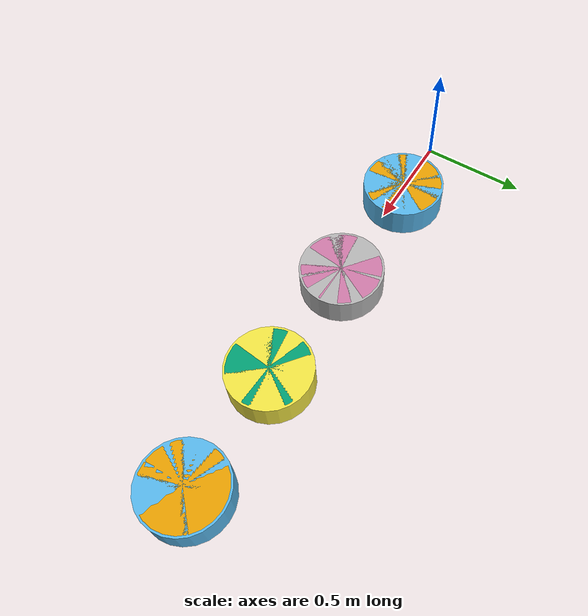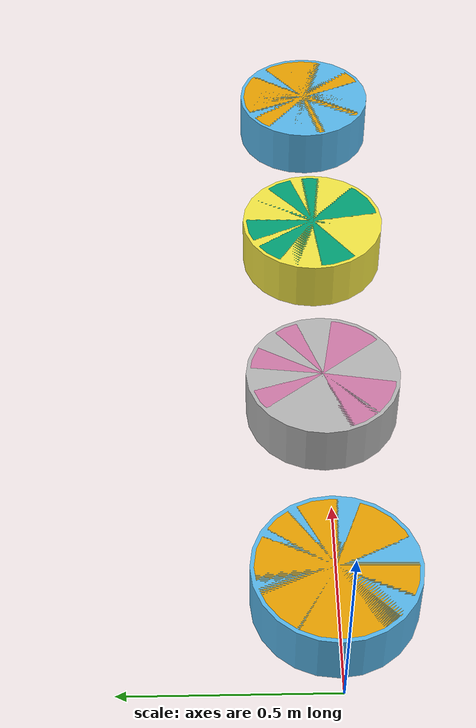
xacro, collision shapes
<?xml version="1.0"?>
<robot
    xmlns:xacro="http://www.ros.org/wiki/xacro" name="hydrusx" >

  <xacro:include filename="$(find hydrus)/urdf/hydrusx/hydrusx_common.xacro" />
  <xacro:include filename="$(find hydrus)/urdf/hydrusx/hydrusx_link.urdf.xacro" />

  <xacro:hydrusx_link self="1" child="2" rotor_direction="-1" general="false" fc="false" pc="false"/>
  <xacro:hydrusx_link self="2" child="3" rotor_direction="1"  general="true" fc="false" pc="false"/>
  <xacro:hydrusx_link self="3" child="4" rotor_direction="-1" general="false" fc="true"  pc="false"/>
  <xacro:hydrusx_link self="4" child="4" rotor_direction="1"  general="false" fc="false" pc="false"/>

</robot>

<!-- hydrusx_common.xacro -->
<robot
    xmlns:xacro="http://www.ros.org/wiki/xacro" name="hydrusx_common" >

  <xacro:property name="pi" value="3.1415926535897931" />
  <!-- kinematics [m] -->
  <xacro:property name="link_length" value=".6" />
  <xacro:property name="link_rod_length" value=".528" />
  <xacro:property name="protector_radius" value=".1925" />
  <xacro:property name="link_joint_offset" value="0.3" />
  <xacro:property name="rotor_radius" value=".02" />
  <xacro:property name="rotor_height" value=".05" />
  <xacro:property name="bat_offset" value="0.0" />
  <xacro:property name="pc_c_offset" value="0.0" />  <!-- odroid u4: 0.22, euclid: 0 -->
  <xacro:property name="pc_v_offset" value="0.2" />  <!-- odroid u4: -0.2, euclid: 0.2 -->
  <xacro:property name="pcs_cable_offset" value="0.0" />
  <xacro:property name="fc_offset" value="-0.26" />
  <xacro:property name="sensor_c_offset" value="-0.215" />
  <xacro:property name="sensor_v_offset" value="-0.01" />
  <xacro:property name="head_leg_offset" value="-0.25" />
  <xacro:property name="tail_leg_offset" value="0.235" />

  <!-- inertial paramters -->
  <!-- mass [Kg] -->
  <xacro:property name="link_rod_mass" value="0.099" />
  <xacro:property name="link_center_mass" value=".211" />
  <xacro:property name="joint_mass" value=".2075" />
  <xacro:property name="protector_mass" value=".05" />
  <xacro:property name="protector_holder_mass" value=".0386" />
  <xacro:property name="bat_mass" value="0.364" /> <!-- hyperon: 0.41, white: 0.364 -->
  <xacro:property name="fc_mass" value=".03" />
  <xacro:property name="pc_c_mass" value=".13" /> <!-- odoroid u4: 0.1, euclid: 0.13 -->
  <xacro:property name="pc_v_mass" value=".24" />
  <xacro:property name="pcs_cable_mass" value=".03" />
  <xacro:property name="head_leg_mass" value="0.0623" />
  <xacro:property name="tail_leg_mass" value="0.09" />
  <xacro:property name="sensor_c_mass" value="0.065" />
  <xacro:property name="sensor_v_mass" value="0.18" />
  <xacro:property name="rotor_mass" value=".05" /> <!-- exclude from center mass -->

  <!-- inertial [N*m*m] -->
  <xacro:property name="link_rod_inertia" value="${link_rod_mass * link_rod_length * link_rod_length /12}" /> <!-- mass * dist * dist -->
  <xacro:property name="protector_inertia" value="${protector_mass * protector_radius * protector_radius}" /> <!-- mass * dist * dist -->
  <xacro:property name="protector_holder_inertia" value="${protector_holder_mass * protector_radius * protector_radius}" /> <!-- mass * dist * dist -->

  <!-- dynamics -->
  <xacro:property name="max_force" value="18" />

  <xacro:macro name="link_model" params="type">
    <collision>
      <origin rpy="0 0 0" xyz="${link_length* 0.5} 0 -0.03"/>
      <geometry>
        <cylinder length="0.15" radius="${protector_radius}"/>
      </geometry>
    </collision>

    <visual>
      <origin rpy="${-pi/2} 0 0" xyz="${link_length* 0.5} 0 0"/>
      <geometry>
        <mesh filename="package://hydrus/urdf/hydrusx/mesh/hydrusx_link${type}.dae"/>
      </geometry>
    </visual>
  </xacro:macro>

  <xacro:macro name="extra_module" params="name parent mass offset">
    <joint name="link2${name}" type="fixed">
      <parent link="link${parent}"/>
      <child link="${name}"/>
      <origin rpy="0 0 0" xyz="${offset} 0 0"/>
      <axis xyz="0 0 1"/>
    </joint>
    <link name="${name}">
      <inertial>
        <origin xyz="0 0 0" rpy="0 0 0"/>
        <mass value="${mass}"/>
        <inertia
            ixx="0.00001" ixy="0.0" ixz="0.0"
            iyy="0.00001" iyz="0.0"
            izz="0.00002"/>
      </inertial>
    </link>
  </xacro:macro>

  <!-- friction -->
  <xacro:macro name="friction" params="self">
    <gazebo reference="link${self}">
      <mu1>0.0001</mu1>
      <mu2>0.0001</mu2>
    </gazebo>
  </xacro:macro>

  <xacro:macro name="damping_factor" params="link">
    <gazebo reference="${link}">
      <dampingFactor>0.00</dampingFactor>
    </gazebo>
  </xacro:macro>
</robot>

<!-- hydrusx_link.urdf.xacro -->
<robot
    xmlns:xacro="http://www.ros.org/wiki/xacro" name="hydrusx_link" >

  <!-- D-H kai description(different from prof.nakamura) -->
  <xacro:macro name="hydrusx_link" params="self child rotor_direction general fc pc">

    <!-- link -->
    <link name="link${self}">
      <!-- common inertial -->
      <inertial>
        <origin xyz="${link_length* 0.5} 0 0" rpy="0 0 0"/>
        <mass value="${link_rod_mass + link_center_mass + protector_mass + protector_holder_mass - rotor_mass}" /> <!-- exclude from center mass -->
        <inertia
            ixx="${protector_inertia / 2}" ixy="0.0" ixz="0.0"
            iyy="${link_rod_inertia + protector_holder_inertia + protector_inertia /2}" iyz="0.0"
            izz="${link_rod_inertia + protector_holder_inertia + protector_inertia}"/>
      </inertial>

      <!-- sepcial inertia & visual & collision -->
      <!-- head -->
      <xacro:if value="${self == 1}">
        <xacro:link_model type="1" />
      </xacro:if>

      <!-- tail -->
      <xacro:if value="${self == child}">
        <xacro:link_model type="4" />
      </xacro:if>

      <!-- fc -->
      <xacro:if value="${fc}">
        <xacro:link_model type="3" />
      </xacro:if>

      <!-- pc: -->
      <xacro:if value="${pc}">
        <xacro:link_model type="2" />
      </xacro:if>

      <!-- general -->
      <xacro:if value="${general}">
        <xacro:link_model type="5" />
      </xacro:if>
    </link>
    <xacro:damping_factor link ="link${self}"/>

    <!-- rotor -->
    <joint name="rotor${self}" type="continuous">
      <limit effort="100.0" lower="0" upper="${max_force}" velocity="0.5"/> <!-- force range -->
      <parent link="link${self}"/>
      <child link="thrust${self}"/>
      <origin rpy="0 0 0" xyz="${link_length* 0.5} 0 0"/>
      <axis xyz="0 0 ${rotor_direction}"/>
    </joint>

    <link name="thrust${self}">
      <!-- visual & collisiont -->
      <inertial>
        <origin xyz="0 0 0" rpy="0 0 0"/>
        <mass value="${rotor_mass}"/>
        <inertia
            ixx="${rotor_mass * .25 * rotor_radius * rotor_radius}" ixy="0.0" ixz="0.0"
            iyy="${rotor_mass * .25 * rotor_radius * rotor_radius}" iyz="0.0"
            izz="${rotor_mass * .5 * rotor_radius * rotor_radius}"/>
      </inertial>

      <collision>
        <origin rpy="0 0 0" xyz="0 0 -0.03"/>
        <geometry>
          <cylinder length="0.15" radius="${protector_radius + 0.01}"/>
        </geometry>
        </collision>

    </link>
    <xacro:damping_factor link ="thrust${self}"/>

    <!-- extra module -->
    <!-- head -->
    <xacro:if value="${self == 1}">
      <!-- dummy root link for KDL -->
      <link name="root">
        <inertial>
          <origin xyz="0 0 0" rpy="0 0 0"/>
          <mass value="0.00001"/>
          <inertia
              ixx="0.000001" ixy="0.0" ixz="0.0"
              iyy="0.000001" iyz="0.0"
              izz="0.000002"/>
        </inertial>
      </link>
      <joint name="root_joint" type="fixed">
        <parent link="root"/>
        <child link="link${self}"/>
        <origin rpy="0 0 0" xyz="0 0 0"/>
        <axis xyz="0 0 1"/>
      </joint>

      <xacro:extra_module name = "head" parent = "${self}" mass = "${head_leg_mass}" offset = "${link_length * 0.5 + head_leg_offset}" />
      <!-- battery -->
      <xacro:extra_module name = "bat${self}" parent = "${self}" mass = "${bat_mass}" offset = "${link_length * 0.5 + bat_offset}" />
    </xacro:if>

    <!-- tail -->
    <xacro:if value="${self == child}">
      <xacro:extra_module name = "tail" parent = "${self}" mass = "${tail_leg_mass}" offset = "${link_length * 0.5 + tail_leg_offset}" />
      <!-- battery -->
      <xacro:extra_module name = "bat${self}" parent = "${self}" mass = "${bat_mass}" offset = "${link_length * 0.5 + bat_offset}" />
    </xacro:if>

    <!-- fc -->
    <xacro:if value="${fc}">
      <xacro:extra_module name = "fc" parent = "${self}" mass = "${fc_mass}" offset = "${link_length * 0.5 + fc_offset}" />
      <!-- sensor for control -->
      <xacro:extra_module name = "sensor_c" parent = "${self}" mass = "${sensor_c_mass}" offset = "${link_length * 0.5 + sensor_c_offset}" />
      <!-- control side -->
      <!-- battery -->
      <xacro:extra_module name = "bat${self}" parent = "${self}" mass = "${bat_mass}" offset = "${link_length * 0.5 + bat_offset}" />
    </xacro:if>

    <!-- pc -->
    <xacro:if value="${pc}">
      <xacro:extra_module name = "pc_c" parent = "${self}" mass = "${pc_c_mass}" offset = "${link_length * 0.5 + pc_c_offset}" />
      <!-- battery -->
      <xacro:extra_module name = "bat${self}" parent = "${self}" mass = "${bat_mass}" offset = "${link_length * 0.5 + bat_offset}" />
    </xacro:if>

    <!-- general -->
    <xacro:if value="${general}">
      <!-- battery -->
      <xacro:extra_module name = "bat${self}" parent = "${self}" mass = "${bat_mass}" offset = "${link_length * 0.5 + bat_offset}" />
    </xacro:if>

    <!-- joint -->>
    <xacro:unless value="${self == child}">
      <joint name="joint${self}" type="revolute">
        <limit effort="3.1" lower="-1.6" upper="1.6" velocity="0.5"/>
        <parent link="link${self}"/>
        <child link="link${child}"/>
        <origin rpy="0 0 0" xyz="${link_length} 0 0"/>
        <axis xyz="0 0 1"/>
        <dynamics damping="0.8" friction="0.05"/>
      </joint>

      <xacro:extra_module name = "joint${self}_module" parent = "${self}" mass = "${joint_mass}" offset = "${link_length* 0.5 + link_joint_offset}" />
    </xacro:unless>

    <!-- hardware interface -->
    <xacro:unless value="${self == child}">
      <transmission name="joint_tran${self}">
        <type>transmission_interface/SimpleTransmission</type>
        <joint name="joint${self}">
          <!-- TODO: effort is torque, maybe position is enough -->
          <hardwareInterface>hardware_interface/EffortJointInterface</hardwareInterface>
        </joint>
        <actuator name="servo{self}">
          <!-- TODO: effort is torque, maybe position is enough -->
          <hardwareInterface>hardware_interface/EffortJointInterface</hardwareInterface>
          <mechanicalReduction>1</mechanicalReduction>
        </actuator>
      </transmission>
    </xacro:unless>

    <transmission name="rotor_tran${self}">
      <type>transmission_interface/SimpleTransmission</type>
      <joint name="rotor${self}">
        <!-- TODO: effort is torque, maybe position is enough -->
        <hardwareInterface>RotorInterface</hardwareInterface>
      </joint>
      <actuator name="rotor${self}">
        <!-- TODO: effort is torque, maybe position is enough -->
        <hardwareInterface>RotorInterface</hardwareInterface>
        <mechanicalReduction>1</mechanicalReduction>
      </actuator>
    </transmission>

    <xacro:friction self ="${self}"/>

  </xacro:macro>

</robot>
